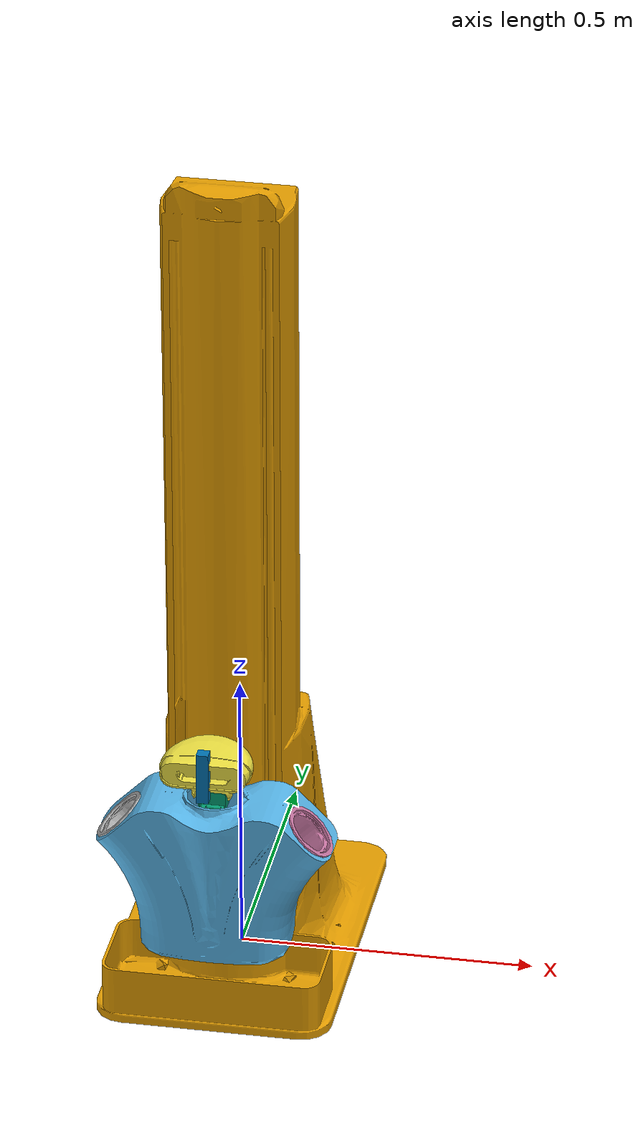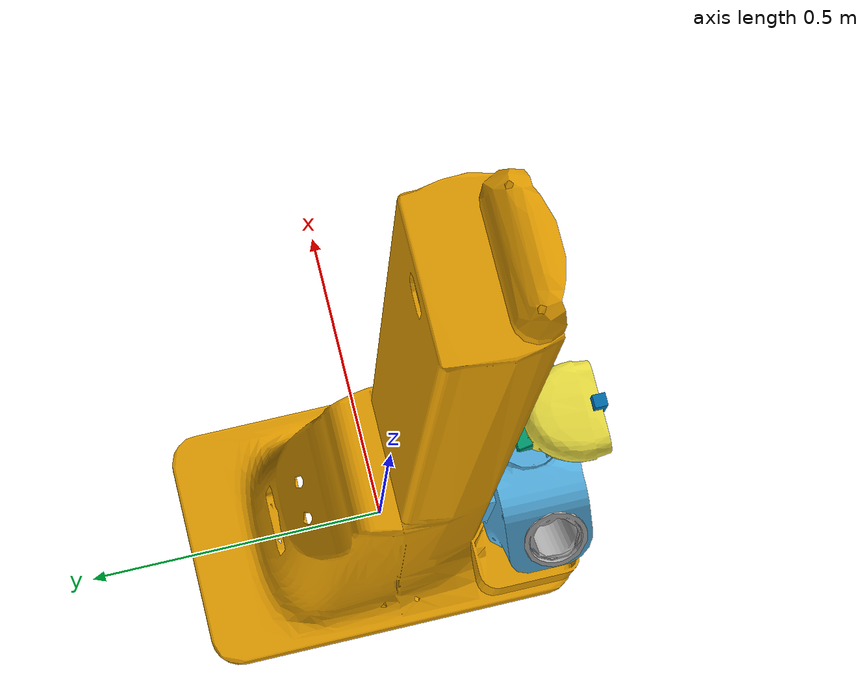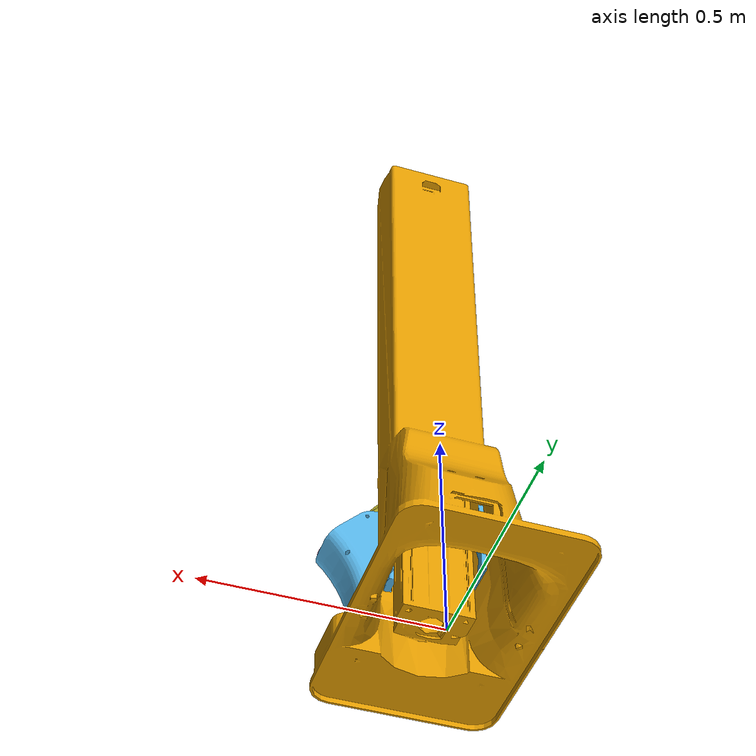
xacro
<?xml version="1.0"?>
<robot name="body_head_platform" xmlns:xacro="http://www.ros.org/wiki/xacro">
  <xacro:property name="PI" value="3.1415926535897931"/>
  <xacro:property name="mesh_path" value="file://$(find aidal_description)/meshes/body/"/>
  <xacro:macro name="visual_collision" params="mesh">
    <visual>
      <geometry>
        <mesh filename="${mesh_path}${mesh}" />
      </geometry>
    </visual>
    <collision>
      <geometry>
        <mesh filename="${mesh_path}${mesh}" />
      </geometry>
    </collision>
  </xacro:macro>
  <link name="body_base_link">
    <inertial>
      <origin xyz="-0.0002128 -0.02749 0.37118" />
      <mass value="12.159"/>
      <inertia
          ixx="0.69175"
          ixy="3.0303E-06"
          ixz="-1.7947E-05"
          iyy="0.68839"
          iyz="0.012363"
          izz="0.15316"/>
    </inertial>
    <xacro:visual_collision mesh="base.glb"/>
  </link>
  <link name="platform_base_link">
    <inertial>
      <origin xyz="-4.8033E-05 -0.05292 0.00070789" />
      <mass value="2.8992"/>
      <inertia
          ixx="0.013327"
          ixy="3.14E-06"
          ixz="3.5257E-06"
          iyy="0.032331"
          iyz="6.163E-05"
          izz="0.021546"/>
    </inertial>
    <xacro:visual_collision mesh="lift.glb"/>
  </link>
  <link name="head_link1">
    <inertial>
      <origin xyz="-0.00017562 -0.015989 0.024926" />
      <mass value="0.049513"/>
      <inertia
          ixx="1.6251E-05"
          ixy="-4.4281E-09"
          ixz="7.808E-08"
          iyy="2.2171E-05"
          iyz="-4.661E-07"
          izz="1.3605E-05"/>
    </inertial>
    <xacro:visual_collision mesh="head1.glb"/>
  </link>
  <link name="head_link2">
    <inertial>
      <origin xyz="-0.00051349 -0.027144 0.0551" />
      <mass value="0.23639"/>
      <inertia
          ixx="0.00025664"
          ixy="-1.6537E-08"
          ixz="1.3993E-07"
          iyy="0.0005615"
          iyz="1.8036E-05"
          izz="0.00052625"/>
    </inertial>
    <xacro:visual_collision mesh="head2.glb"/>
  </link>
  <link name="camera_link">
    <inertial>
      <origin xyz="0.0016556 -0.01252 1.2156E-05" />
      <mass value="0.049778"/>
      <inertia
          ixx="4.8577E-06"
          ixy="4.3442E-07"
          ixz="-6.2436E-10"
          iyy="3.075E-05"
          iyz="6.4645E-10"
          izz="3.0901E-05"/>
    </inertial>
    <visual>
      <geometry>
        <box size="0.02 0.09 0.02"/>
      </geometry>
    </visual>
  </link>

  <joint name="lift_joint" type="prismatic">
    <origin xyz="0 -0.11663 0.271" />
    <parent link="body_base_link"/>
    <child link="platform_base_link"/>
    <axis xyz="0 0 1"/>
    <limit lower="0" upper="1" effort="60" velocity="0.15"/>
  </joint>

  <joint name="head_joint1" type="revolute">
    <origin xyz="0 -0.1018 0.126" />
    <parent link="platform_base_link"/>
    <child link="head_link1"/>
    <axis xyz="0 0 1"/>
    <limit lower="-1.256" upper="1.256" effort="2" velocity="1.57"/>
  </joint>

  <joint name="head_joint2" type="revolute">
    <origin xyz="0 -0.02 0.044" />
    <parent link="head_link1"/>
    <child link="head_link2"/>
    <axis xyz="-1 0 0"/>
    <limit lower="-0.419" upper="0.419" effort="2" velocity="1.57"/>
  </joint>

  <joint name="camera_joint" type="fixed">
    <origin xyz="-0.0002391 -0.076866 0.061606" rpy="-${PI/2} 0 ${PI}"/>
    <parent link="head_link2"/>
    <child link="camera_link"/>
  </joint>

  <link name="top_camera"/>
  <joint name="top_camera_joint" type="fixed">
    <origin xyz=" 0 -0.1275 1.451" rpy="-${PI/2} 0 ${PI}"/>
    <parent link="body_base_link"/>
    <child link="top_camera"/>
  </joint>

  <joint name="l_base_joint1" type="fixed">
    <origin xyz="0.1 -0.1103 0.031645" rpy="0 -${PI/4} ${PI}"/>
    <parent link="platform_base_link"/>
    <child link="left_base_link"/>
  </joint>

  <joint name="r_base_joint1" type="fixed">
    <origin xyz="-0.1 -0.1103 0.031645" rpy="0 -${PI/4} 0"/>
    <parent link="platform_base_link"/>
    <child link="right_base_link"/>
  </joint>

  <link name="left_base_link">
    <inertial>
      <origin xyz="-3.58E-05 -0.0056915 0.024464"/>
      <mass value="0.23441"/>
      <inertia
          ixx="0.00027369"
          ixy="6.5702E-08"
          ixz="2.7812E-09"
          iyy="0.000264"
          iyz="-1.6355E-06"
          izz="0.00036679"/>
    </inertial>
    <visual>
      <geometry>
        <mesh filename="${mesh_path}arm_base.glb"/>
      </geometry>
    </visual>
  </link>

  <link name="right_base_link">
    <inertial>
      <origin xyz="-4.8022E-05 0.0056915 0.024715"/>
      <mass value="0.23441"/>
      <inertia
          ixx="0.00027369"
          ixy="6.5702E-08"
          ixz="-3.2599E-09"
          iyy="0.000264"
          iyz="1.6355E-06"
          izz="0.00036679"/>
    </inertial>
    <visual>
      <geometry>
        <mesh filename="${mesh_path}arm_base.glb"/>
      </geometry>
    </visual>
  </link>
</robot>
